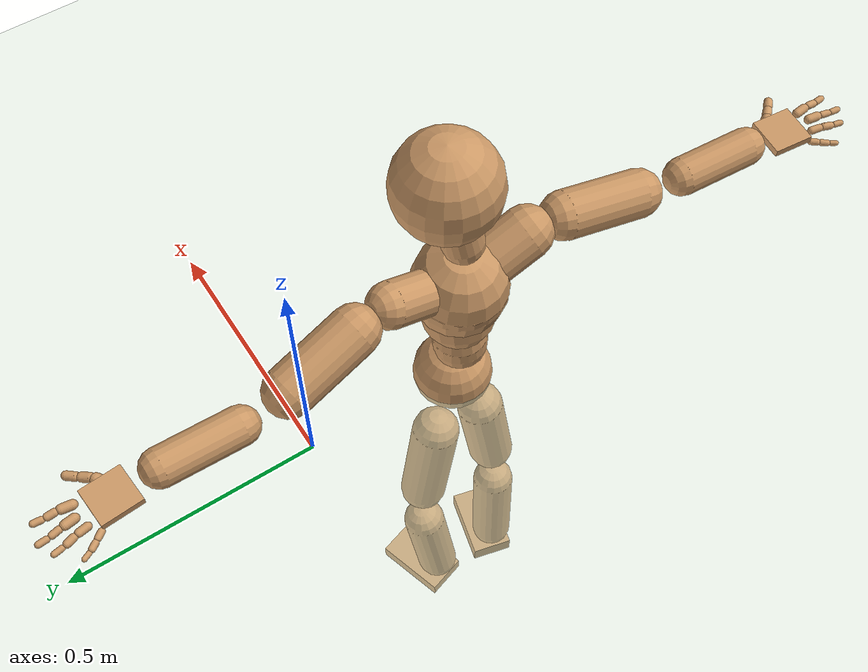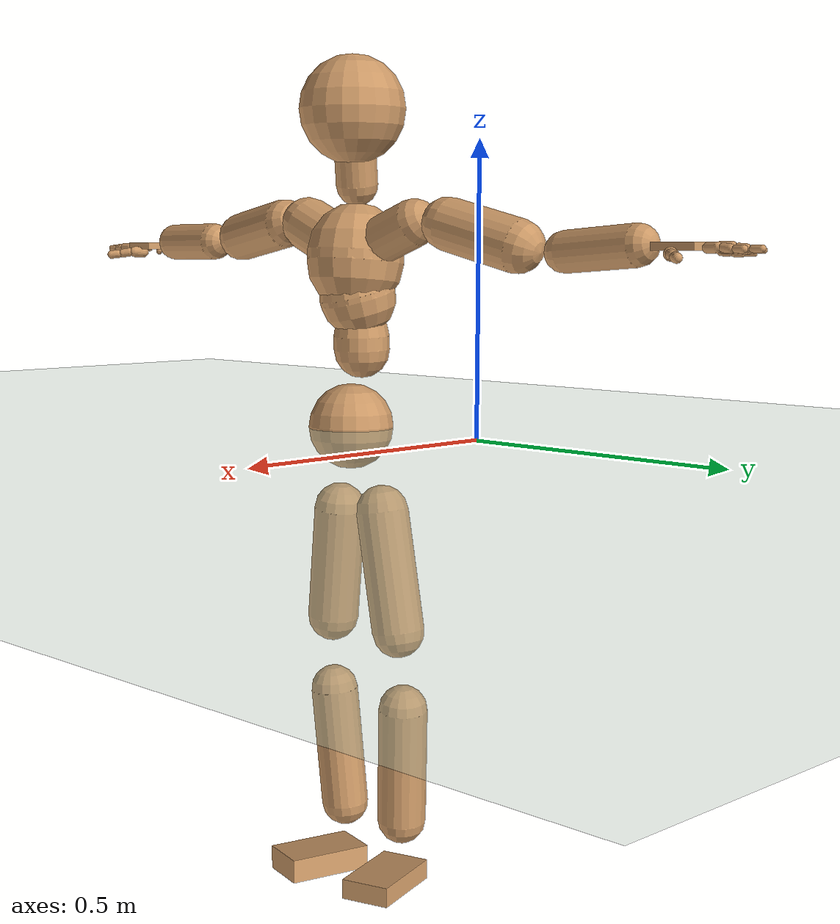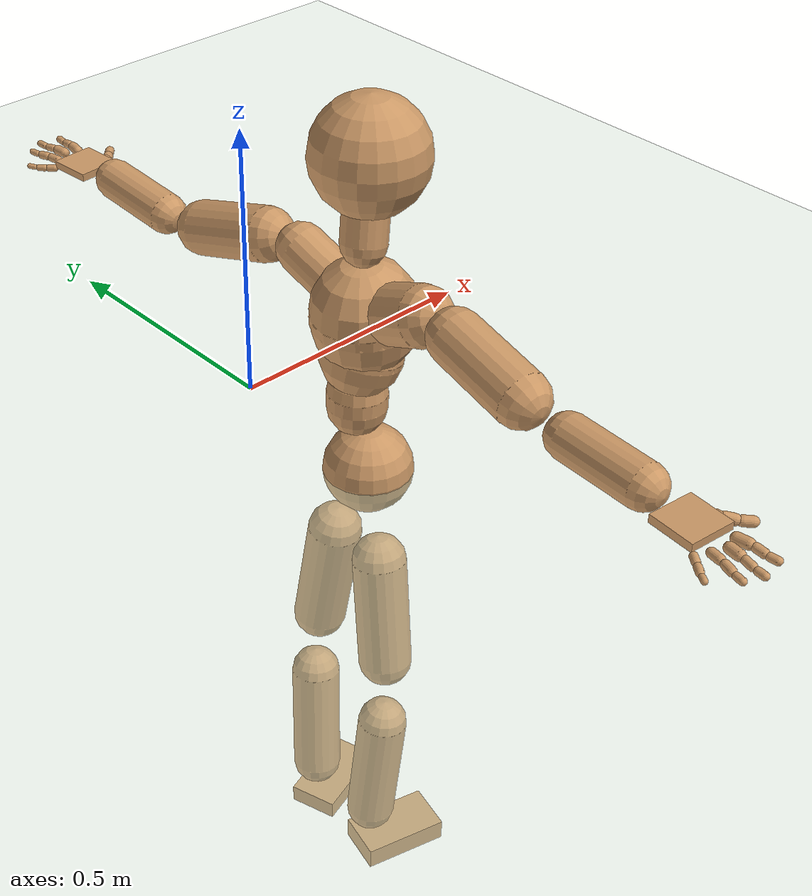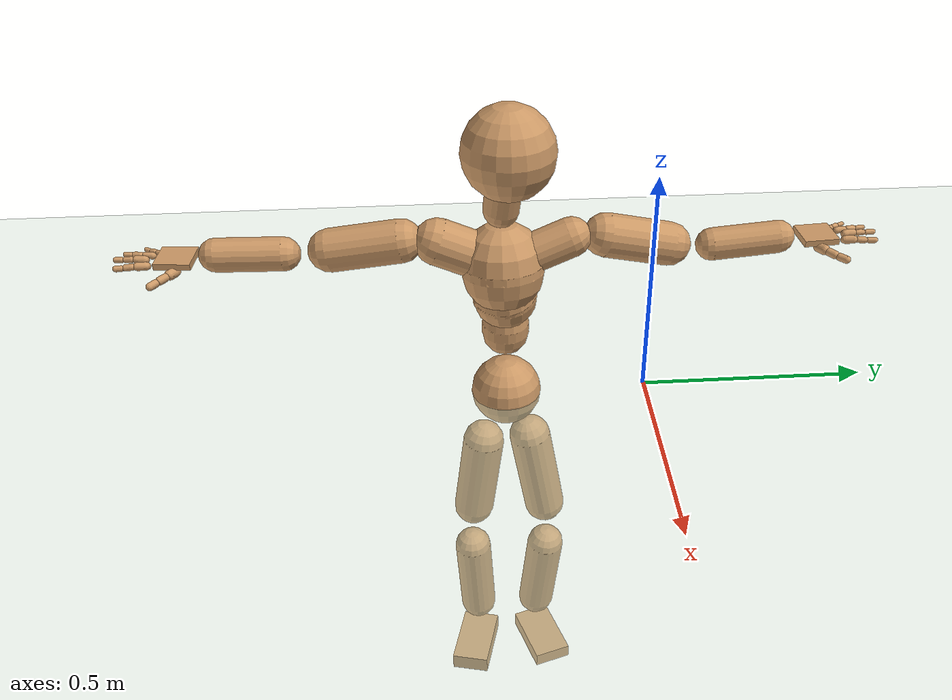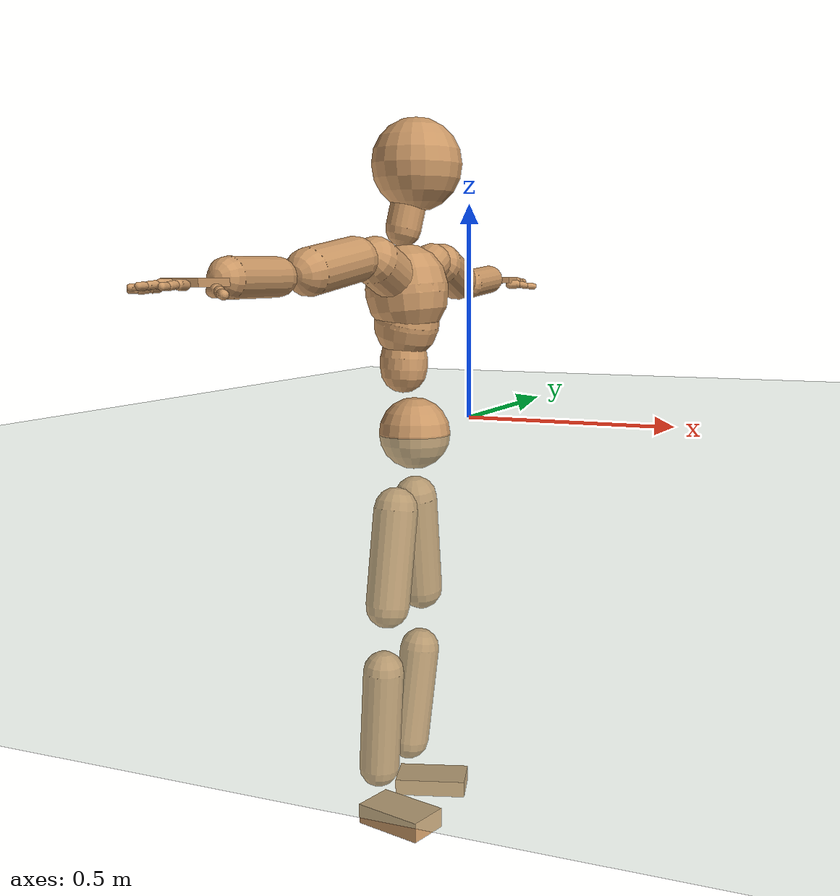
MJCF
<mujoco model="humanoid">
  <compiler coordinate="local" angle="radian"/>
  <default>
    <joint damping="0.0" armature="0.01" stiffness="0.0" limited="true"/>
    <geom conaffinity="1" condim="3" contype="7" margin="0.001" rgba="0.8 0.6 .4 1"/>
  </default>
  <asset>
    <texture type="skybox" builtin="gradient" rgb1=".4 .5 .6" rgb2="0 0 0" width="100" height="100"/>
    <texture builtin="flat" height="1278" mark="cross" markrgb="1 1 1" name="texgeom" random="0.01" rgb1="0.8 0.6 0.4" rgb2="0.8 0.6 0.4" type="cube" width="127"/>
    <texture builtin="checker" height="100" name="texplane" rgb1="0 0 0" rgb2="0.8 0.8 0.8" type="2d" width="100"/>
    <material name="MatPlane" reflectance="0.5" shininess="1" specular="1" texrepeat="60 60" texture="texplane"/>
    <material name="geom" texture="texgeom" texuniform="true"/>
  </asset>
  <worldbody>
    <light cutoff="100" diffuse="1 1 1" dir="-0 0 -1.3" directional="true" exponent="1" pos="0 0 1.3" specular=".1 .1 .1"/>
    <geom conaffinity="1" condim="3" name="floor" pos="0 0 0" rgba="0.8 0.9 0.8 1" size="100 100 .2" type="plane" material="MatPlane"/>
    <body name="Pelvis" pos="0.0004 -0.3114 0.0005">
      <freejoint name="Pelvis"/>
      <geom type="sphere" contype="1" conaffinity="1" density="500" size="0.0777" pos="0.0000 0.0000 0.0000" name="Pelvis"/>
      <body name="L_Hip" pos="-0.0238 0.0431 -0.0804">
        <joint name="L_Hip_x" type="hinge" pos="0 0 0" axis="1 0 0" stiffness="800" damping="80" armature="0.02" range="-180.0000 180.0000"/>
        <joint name="L_Hip_y" type="hinge" pos="0 0 0" axis="0 1 0" stiffness="800" damping="80" armature="0.02" range="-180.0000 180.0000"/>
        <joint name="L_Hip_z" type="hinge" pos="0 0 0" axis="0 0 1" stiffness="800" damping="80" armature="0.02" range="-180.0000 180.0000"/>
        <geom type="capsule" contype="1" conaffinity="1" density="500" fromto="-0.0016 0.0123 -0.0732 -0.0065 0.0491 -0.2928" size="0.048" name="L_Hip"/>
        <body name="L_Knee" pos="-0.0081 0.0613 -0.366">
          <joint name="L_Knee_x" type="hinge" pos="0 0 0" axis="1 0 0" stiffness="800" damping="80" armature="0.02" range="-180.0000 180.0000"/>
          <joint name="L_Knee_y" type="hinge" pos="0 0 0" axis="0 1 0" stiffness="800" damping="80" armature="0.02" range="-180.0000 180.0000"/>
          <joint name="L_Knee_z" type="hinge" pos="0 0 0" axis="0 0 1" stiffness="800" damping="80" armature="0.02" range="-180.0000 180.0000"/>
          <geom type="capsule" contype="1" conaffinity="1" density="500" fromto="-0.0062 -0.0073 -0.0737 -0.0249 -0.0293 -0.2948" size="0.0451" name="L_Knee"/>
          <body name="L_Ankle" pos="-0.0311 -0.0366 -0.3684">
            <joint name="L_Ankle_x" type="hinge" pos="0 0 0" axis="1 0 0" stiffness="800" damping="80" armature="0.02" range="-180.0000 180.0000"/>
            <joint name="L_Ankle_y" type="hinge" pos="0 0 0" axis="0 1 0" stiffness="800" damping="80" armature="0.02" range="-180.0000 180.0000"/>
            <joint name="L_Ankle_z" type="hinge" pos="0 0 0" axis="0 0 1" stiffness="800" damping="80" armature="0.02" range="-180.0000 180.0000"/>
            <geom type="box" contype="1" conaffinity="1" density="500" pos="0.0593 0.0185 -0.0263" size="0.0802 0.046 0.0183" quat="0.9886 0.0000 0.0000 0.1506" name="L_Ankle"/>
            <body name="L_Toe" pos="0.1187 0.037 -0.0525">
              <joint name="L_Toe_x" type="hinge" pos="0 0 0" axis="1 0 0" stiffness="500" damping="50" armature="0.02" range="-180.0000 180.0000"/>
              <joint name="L_Toe_y" type="hinge" pos="0 0 0" axis="0 1 0" stiffness="500" damping="50" armature="0.02" range="-180.0000 180.0000"/>
              <joint name="L_Toe_z" type="hinge" pos="0 0 0" axis="0 0 1" stiffness="500" damping="50" armature="0.02" range="-180.0000 180.0000"/>
              <geom type="box" contype="1" conaffinity="1" density="500" pos="0.0000 0.0000 0.0278" size="0.0009 0.0022 0.001" quat="0.9878 0.0000 0.0000 0.1557" name="L_Toe"/>
            </body>
          </body>
        </body>
      </body>
      <body name="R_Hip" pos="-0.0186 -0.0441 -0.0896">
        <joint name="R_Hip_x" type="hinge" pos="0 0 0" axis="1 0 0" stiffness="800" damping="80" armature="0.02" range="-180.0000 180.0000"/>
        <joint name="R_Hip_y" type="hinge" pos="0 0 0" axis="0 1 0" stiffness="800" damping="80" armature="0.02" range="-180.0000 180.0000"/>
        <joint name="R_Hip_z" type="hinge" pos="0 0 0" axis="0 0 1" stiffness="800" damping="80" armature="0.02" range="-180.0000 180.0000"/>
        <geom type="capsule" contype="1" conaffinity="1" density="500" fromto="-0.0027 -0.0097 -0.0702 -0.0109 -0.0387 -0.2807" size="0.0477" name="R_Hip"/>
        <body name="R_Knee" pos="-0.0137 -0.0484 -0.3508">
          <joint name="R_Knee_x" type="hinge" pos="0 0 0" axis="1 0 0" stiffness="800" damping="80" armature="0.02" range="-180.0000 180.0000"/>
          <joint name="R_Knee_y" type="hinge" pos="0 0 0" axis="0 1 0" stiffness="800" damping="80" armature="0.02" range="-180.0000 180.0000"/>
          <joint name="R_Knee_z" type="hinge" pos="0 0 0" axis="0 0 1" stiffness="800" damping="80" armature="0.02" range="-180.0000 180.0000"/>
          <geom type="capsule" contype="1" conaffinity="1" density="500" fromto="-0.0061 0.0030 -0.0762 -0.0245 0.0119 -0.3046" size="0.0446" name="R_Knee"/>
          <body name="R_Ankle" pos="-0.0307 0.0149 -0.3808">
            <joint name="R_Ankle_x" type="hinge" pos="0 0 0" axis="1 0 0" stiffness="800" damping="80" armature="0.02" range="-180.0000 180.0000"/>
            <joint name="R_Ankle_y" type="hinge" pos="0 0 0" axis="0 1 0" stiffness="800" damping="80" armature="0.02" range="-180.0000 180.0000"/>
            <joint name="R_Ankle_z" type="hinge" pos="0 0 0" axis="0 0 1" stiffness="800" damping="80" armature="0.02" range="-180.0000 180.0000"/>
            <geom type="box" contype="1" conaffinity="1" density="500" pos="0.0623 -0.0153 -0.0262" size="0.0802 0.046 0.0222" quat="0.9928 0.0000 0.0000 -0.1199" name="R_Ankle"/>
            <body name="R_Toe" pos="0.1246 -0.0305 -0.0525">
              <joint name="R_Toe_x" type="hinge" pos="0 0 0" axis="1 0 0" stiffness="500" damping="50" armature="0.02" range="-180.0000 180.0000"/>
              <joint name="R_Toe_y" type="hinge" pos="0 0 0" axis="0 1 0" stiffness="500" damping="50" armature="0.02" range="-180.0000 180.0000"/>
              <joint name="R_Toe_z" type="hinge" pos="0 0 0" axis="0 0 1" stiffness="500" damping="50" armature="0.02" range="-180.0000 180.0000"/>
              <geom type="box" contype="1" conaffinity="1" density="500" pos="0.0000 0.0000 0.0238" size="0.0009 0.0022 0.001" quat="0.9939 0.0000 0.0000 -0.1107" name="R_Toe"/>
            </body>
          </body>
        </body>
      </body>
      <body name="Torso" pos="-0.0274 0.0006 0.0884">
        <joint name="Torso_x" type="hinge" pos="0 0 0" axis="1 0 0" stiffness="1000" damping="100" armature="0.02" range="-180.0000 180.0000"/>
        <joint name="Torso_y" type="hinge" pos="0 0 0" axis="0 1 0" stiffness="1000" damping="100" armature="0.02" range="-180.0000 180.0000"/>
        <joint name="Torso_z" type="hinge" pos="0 0 0" axis="0 0 1" stiffness="1000" damping="100" armature="0.02" range="-180.0000 180.0000"/>
        <geom type="capsule" contype="1" conaffinity="1" density="500" fromto="0.0031 0.0013 0.0742 0.0020 0.0009 0.0494" size="0.0512" name="Torso"/>
        <body name="Spine" pos="0.0051 0.0021 0.1236">
          <joint name="Spine_x" type="hinge" pos="0 0 0" axis="1 0 0" stiffness="1000" damping="100" armature="0.02" range="-180.0000 180.0000"/>
          <joint name="Spine_y" type="hinge" pos="0 0 0" axis="0 1 0" stiffness="1000" damping="100" armature="0.02" range="-180.0000 180.0000"/>
          <joint name="Spine_z" type="hinge" pos="0 0 0" axis="0 0 1" stiffness="1000" damping="100" armature="0.02" range="-180.0000 180.0000"/>
          <geom type="capsule" contype="1" conaffinity="1" density="500" fromto="0.0074 -0.0026 0.0289 0.0049 -0.0017 0.0192" size="0.0694" name="Spine"/>
          <body name="Chest" pos="0.0123 -0.0044 0.0481">
            <joint name="Chest_x" type="hinge" pos="0 0 0" axis="1 0 0" stiffness="1000" damping="100" armature="0.02" range="-180.0000 180.0000"/>
            <joint name="Chest_y" type="hinge" pos="0 0 0" axis="0 1 0" stiffness="1000" damping="100" armature="0.02" range="-180.0000 180.0000"/>
            <joint name="Chest_z" type="hinge" pos="0 0 0" axis="0 0 1" stiffness="1000" damping="100" armature="0.02" range="-180.0000 180.0000"/>
            <geom type="capsule" contype="1" conaffinity="1" density="500" fromto="-0.0051 -0.0010 0.0541 -0.0034 -0.0007 0.0361" size="0.0882" name="Chest"/>
            <body name="Neck" pos="-0.0161 -0.0062 0.1405">
              <joint name="Neck_x" type="hinge" pos="0 0 0" axis="1 0 0" stiffness="500" damping="50" armature="0.02" range="-180.0000 180.0000"/>
              <joint name="Neck_y" type="hinge" pos="0 0 0" axis="0 1 0" stiffness="500" damping="50" armature="0.02" range="-180.0000 180.0000"/>
              <joint name="Neck_z" type="hinge" pos="0 0 0" axis="0 0 1" stiffness="500" damping="50" armature="0.02" range="-180.0000 180.0000"/>
              <geom type="capsule" contype="1" conaffinity="1" density="500" fromto="0.0063 0.0038 0.0326 0.0251 0.0153 0.1306" size="0.0379" name="Neck"/>
              <body name="Head" pos="0.0313 0.0191 0.1632">
                <joint name="Head_x" type="hinge" pos="0 0 0" axis="1 0 0" stiffness="500" damping="50" armature="0.02" range="-180.0000 180.0000"/>
                <joint name="Head_y" type="hinge" pos="0 0 0" axis="0 1 0" stiffness="500" damping="50" armature="0.02" range="-180.0000 180.0000"/>
                <joint name="Head_z" type="hinge" pos="0 0 0" axis="0 0 1" stiffness="500" damping="50" armature="0.02" range="-180.0000 180.0000"/>
                <geom type="sphere" contype="1" conaffinity="1" density="500" size="0.0957" pos="0.0000 0.0000 0.0000" name="Head"/>
              </body>
            </body>
            <body name="L_Thorax" pos="-0.0029 0.04 0.065">
              <joint name="L_Thorax_x" type="hinge" pos="0 0 0" axis="1 0 0" stiffness="500" damping="50" armature="0.02" range="-180.0000 180.0000"/>
              <joint name="L_Thorax_y" type="hinge" pos="0 0 0" axis="0 1 0" stiffness="500" damping="50" armature="0.02" range="-180.0000 180.0000"/>
              <joint name="L_Thorax_z" type="hinge" pos="0 0 0" axis="0 0 1" stiffness="500" damping="50" armature="0.02" range="-180.0000 180.0000"/>
              <geom type="capsule" contype="1" conaffinity="1" density="500" fromto="-0.0018 0.0255 0.0099 -0.0072 0.1020 0.0395" size="0.0423" name="L_Thorax"/>
              <body name="L_Shoulder" pos="-0.009 0.1276 0.0494">
                <joint name="L_Shoulder_x" type="hinge" pos="0 0 0" axis="1 0 0" stiffness="500" damping="50" armature="0.02" range="-180.0000 180.0000"/>
                <joint name="L_Shoulder_y" type="hinge" pos="0 0 0" axis="0 1 0" stiffness="500" damping="50" armature="0.02" range="-180.0000 180.0000"/>
                <joint name="L_Shoulder_z" type="hinge" pos="0 0 0" axis="0 0 1" stiffness="500" damping="50" armature="0.02" range="-180.0000 180.0000"/>
                <geom type="capsule" contype="1" conaffinity="1" density="500" fromto="-0.0071 0.0469 -0.0126 -0.0282 0.1875 -0.0502" size="0.0463" name="L_Shoulder"/>
                <body name="L_Elbow" pos="-0.0353 0.2343 -0.0628">
                  <joint name="L_Elbow_x" type="hinge" pos="0 0 0" axis="1 0 0" stiffness="500" damping="50" armature="0.02" range="-720.0000 720.0000"/>
                  <joint name="L_Elbow_y" type="hinge" pos="0 0 0" axis="0 1 0" stiffness="500" damping="50" armature="0.02" range="-720.0000 720.0000"/>
                  <joint name="L_Elbow_z" type="hinge" pos="0 0 0" axis="0 0 1" stiffness="500" damping="50" armature="0.02" range="-720.0000 720.0000"/>
                  <geom type="capsule" contype="1" conaffinity="1" density="500" fromto="-0.0009 0.0478 0.0035 -0.0036 0.1914 0.0140" size="0.0351" name="L_Elbow"/>
                  <body name="L_Wrist" pos="-0.0045 0.2392 0.0175">
                    <joint name="L_Wrist_x" type="hinge" pos="0 0 0" axis="1 0 0" stiffness="300" damping="30" armature="0.02" range="-180.0000 180.0000"/>
                    <joint name="L_Wrist_y" type="hinge" pos="0 0 0" axis="0 1 0" stiffness="300" damping="30" armature="0.02" range="-180.0000 180.0000"/>
                    <joint name="L_Wrist_z" type="hinge" pos="0 0 0" axis="0 0 1" stiffness="300" damping="30" armature="0.02" range="-180.0000 180.0000"/>
                    <geom type="box" contype="1" conaffinity="1" density="500" pos="-0.0029 0.0375 -0.0054" size="0.0382 0.0377 0.0067" quat="0.7342 0.0000 0.0000 -0.6790" name="L_Wrist"/>
                    <body name="L_Index1" pos="0.0181 0.0882 -0.0078">
                      <joint name="L_Index1_x" type="hinge" pos="0 0 0" axis="1 0 0" stiffness="100" damping="10" armature="0.02" range="-180.0000 180.0000"/>
                      <joint name="L_Index1_y" type="hinge" pos="0 0 0" axis="0 1 0" stiffness="100" damping="10" armature="0.02" range="-180.0000 180.0000"/>
                      <joint name="L_Index1_z" type="hinge" pos="0 0 0" axis="0 0 1" stiffness="100" damping="10" armature="0.02" range="-180.0000 180.0000"/>
                      <geom type="capsule" contype="1" conaffinity="1" density="500" fromto="0.0007 0.0061 0.0003 0.0028 0.0245 0.0010" size="0.0087" name="L_Index1"/>
                      <body name="L_Index2" pos="0.0034 0.0306 0.0013">
                        <joint name="L_Index2_x" type="hinge" pos="0 0 0" axis="1 0 0" stiffness="100" damping="10" armature="0.02" range="-180.0000 180.0000"/>
                        <joint name="L_Index2_y" type="hinge" pos="0 0 0" axis="0 1 0" stiffness="100" damping="10" armature="0.02" range="-180.0000 180.0000"/>
                        <joint name="L_Index2_z" type="hinge" pos="0 0 0" axis="0 0 1" stiffness="100" damping="10" armature="0.02" range="-180.0000 180.0000"/>
                        <geom type="capsule" contype="1" conaffinity="1" density="500" fromto="0.0000 0.0043 -0.0005 0.0000 0.0173 -0.0019" size="0.0072" name="L_Index2"/>
                        <body name="L_Index3" pos="0 0.0217 -0.0024">
                          <joint name="L_Index3_x" type="hinge" pos="0 0 0" axis="1 0 0" stiffness="100" damping="10" armature="0.02" range="-180.0000 180.0000"/>
                          <joint name="L_Index3_y" type="hinge" pos="0 0 0" axis="0 1 0" stiffness="100" damping="10" armature="0.02" range="-180.0000 180.0000"/>
                          <joint name="L_Index3_z" type="hinge" pos="0 0 0" axis="0 0 1" stiffness="100" damping="10" armature="0.02" range="-180.0000 180.0000"/>
                          <geom type="capsule" contype="1" conaffinity="1" density="500" fromto="0.0004 0.0047 -0.0001 0.0016 0.0189 -0.0003" size="0.0062" name="L_Index3"/>
                        </body>
                      </body>
                    </body>
                    <body name="L_Middle1" pos="-0.004 0.0956 -0.006">
                      <joint name="L_Middle1_x" type="hinge" pos="0 0 0" axis="1 0 0" stiffness="100" damping="10" armature="0.02" range="-180.0000 180.0000"/>
                      <joint name="L_Middle1_y" type="hinge" pos="0 0 0" axis="0 1 0" stiffness="100" damping="10" armature="0.02" range="-180.0000 180.0000"/>
                      <joint name="L_Middle1_z" type="hinge" pos="0 0 0" axis="0 0 1" stiffness="100" damping="10" armature="0.02" range="-180.0000 180.0000"/>
                      <geom type="capsule" contype="1" conaffinity="1" density="500" fromto="-0.0008 0.0058 0.0000 -0.0033 0.0234 0.0000" size="0.0087" name="L_Middle1"/>
                      <body name="L_Middle2" pos="-0.0042 0.0292 0">
                        <joint name="L_Middle2_x" type="hinge" pos="0 0 0" axis="1 0 0" stiffness="100" damping="10" armature="0.02" range="-180.0000 180.0000"/>
                        <joint name="L_Middle2_y" type="hinge" pos="0 0 0" axis="0 1 0" stiffness="100" damping="10" armature="0.02" range="-180.0000 180.0000"/>
                        <joint name="L_Middle2_z" type="hinge" pos="0 0 0" axis="0 0 1" stiffness="100" damping="10" armature="0.02" range="-180.0000 180.0000"/>
                        <geom type="capsule" contype="1" conaffinity="1" density="500" fromto="-0.0008 0.0045 -0.0005 -0.0032 0.0179 -0.0018" size="0.0065" name="L_Middle2"/>
                        <body name="L_Middle3" pos="-0.004 0.0224 -0.0023">
                          <joint name="L_Middle3_x" type="hinge" pos="0 0 0" axis="1 0 0" stiffness="100" damping="10" armature="0.02" range="-180.0000 180.0000"/>
                          <joint name="L_Middle3_y" type="hinge" pos="0 0 0" axis="0 1 0" stiffness="100" damping="10" armature="0.02" range="-180.0000 180.0000"/>
                          <joint name="L_Middle3_z" type="hinge" pos="0 0 0" axis="0 0 1" stiffness="100" damping="10" armature="0.02" range="-180.0000 180.0000"/>
                          <geom type="capsule" contype="1" conaffinity="1" density="500" fromto="-0.0004 0.0049 -0.0001 -0.0016 0.0195 -0.0002" size="0.0059" name="L_Middle3"/>
                        </body>
                      </body>
                    </body>
                    <body name="L_Pinky1" pos="-0.0414 0.0729 -0.0134">
                      <joint name="L_Pinky1_x" type="hinge" pos="0 0 0" axis="1 0 0" stiffness="100" damping="10" armature="0.02" range="-180.0000 180.0000"/>
                      <joint name="L_Pinky1_y" type="hinge" pos="0 0 0" axis="0 1 0" stiffness="100" damping="10" armature="0.02" range="-180.0000 180.0000"/>
                      <joint name="L_Pinky1_z" type="hinge" pos="0 0 0" axis="0 0 1" stiffness="100" damping="10" armature="0.02" range="-180.0000 180.0000"/>
                      <geom type="capsule" contype="1" conaffinity="1" density="500" fromto="-0.0022 0.0031 -0.0003 -0.0089 0.0124 -0.0012" size="0.0062" name="L_Pinky1"/>
                      <body name="L_Pinky2" pos="-0.0112 0.0155 -0.0015">
                        <joint name="L_Pinky2_x" type="hinge" pos="0 0 0" axis="1 0 0" stiffness="100" damping="10" armature="0.02" range="-180.0000 180.0000"/>
                        <joint name="L_Pinky2_y" type="hinge" pos="0 0 0" axis="0 1 0" stiffness="100" damping="10" armature="0.02" range="-180.0000 180.0000"/>
                        <joint name="L_Pinky2_z" type="hinge" pos="0 0 0" axis="0 0 1" stiffness="100" damping="10" armature="0.02" range="-180.0000 180.0000"/>
                        <geom type="capsule" contype="1" conaffinity="1" density="500" fromto="-0.0021 0.0031 -0.0003 -0.0084 0.0122 -0.0013" size="0.0061" name="L_Pinky2"/>
                        <body name="L_Pinky3" pos="-0.0105 0.0153 -0.0016">
                          <joint name="L_Pinky3_x" type="hinge" pos="0 0 0" axis="1 0 0" stiffness="100" damping="10" armature="0.02" range="-180.0000 180.0000"/>
                          <joint name="L_Pinky3_y" type="hinge" pos="0 0 0" axis="0 1 0" stiffness="100" damping="10" armature="0.02" range="-180.0000 180.0000"/>
                          <joint name="L_Pinky3_z" type="hinge" pos="0 0 0" axis="0 0 1" stiffness="100" damping="10" armature="0.02" range="-180.0000 180.0000"/>
                          <geom type="capsule" contype="1" conaffinity="1" density="500" fromto="-0.0017 0.0035 0.0001 -0.0068 0.0138 0.0003" size="0.0047" name="L_Pinky3"/>
                        </body>
                      </body>
                    </body>
                    <body name="L_Ring1" pos="-0.0258 0.0848 -0.0088">
                      <joint name="L_Ring1_x" type="hinge" pos="0 0 0" axis="1 0 0" stiffness="100" damping="10" armature="0.02" range="-180.0000 180.0000"/>
                      <joint name="L_Ring1_y" type="hinge" pos="0 0 0" axis="0 1 0" stiffness="100" damping="10" armature="0.02" range="-180.0000 180.0000"/>
                      <joint name="L_Ring1_z" type="hinge" pos="0 0 0" axis="0 0 1" stiffness="100" damping="10" armature="0.02" range="-180.0000 180.0000"/>
                      <geom type="capsule" contype="1" conaffinity="1" density="500" fromto="-0.0009 0.0054 0.0000 -0.0038 0.0214 0.0001" size="0.0074" name="L_Ring1"/>
                      <body name="L_Ring2" pos="-0.0047 0.0268 0.0001">
                        <joint name="L_Ring2_x" type="hinge" pos="0 0 0" axis="1 0 0" stiffness="100" damping="10" armature="0.02" range="-180.0000 180.0000"/>
                        <joint name="L_Ring2_y" type="hinge" pos="0 0 0" axis="0 1 0" stiffness="100" damping="10" armature="0.02" range="-180.0000 180.0000"/>
                        <joint name="L_Ring2_z" type="hinge" pos="0 0 0" axis="0 0 1" stiffness="100" damping="10" armature="0.02" range="-180.0000 180.0000"/>
                        <geom type="capsule" contype="1" conaffinity="1" density="500" fromto="-0.0013 0.0044 -0.0004 -0.0050 0.0176 -0.0017" size="0.0071" name="L_Ring2"/>
                        <body name="L_Ring3" pos="-0.0063 0.022 -0.0021">
                          <joint name="L_Ring3_x" type="hinge" pos="0 0 0" axis="1 0 0" stiffness="100" damping="10" armature="0.02" range="-180.0000 180.0000"/>
                          <joint name="L_Ring3_y" type="hinge" pos="0 0 0" axis="0 1 0" stiffness="100" damping="10" armature="0.02" range="-180.0000 180.0000"/>
                          <joint name="L_Ring3_z" type="hinge" pos="0 0 0" axis="0 0 1" stiffness="100" damping="10" armature="0.02" range="-180.0000 180.0000"/>
                          <geom type="capsule" contype="1" conaffinity="1" density="500" fromto="-0.0009 0.0048 -0.0000 -0.0034 0.0192 -0.0001" size="0.0055" name="L_Ring3"/>
                        </body>
                      </body>
                    </body>
                    <body name="L_Thumb1" pos="0.0238 0.033 -0.0176">
                      <joint name="L_Thumb1_x" type="hinge" pos="0 0 0" axis="1 0 0" stiffness="100" damping="10" armature="0.02" range="-180.0000 180.0000"/>
                      <joint name="L_Thumb1_y" type="hinge" pos="0 0 0" axis="0 1 0" stiffness="100" damping="10" armature="0.02" range="-180.0000 180.0000"/>
                      <joint name="L_Thumb1_z" type="hinge" pos="0 0 0" axis="0 0 1" stiffness="100" damping="10" armature="0.02" range="-180.0000 180.0000"/>
                      <geom type="capsule" contype="1" conaffinity="1" density="500" fromto="0.0050 0.0029 0.0003 0.0199 0.0117 0.0010" size="0.011" name="L_Thumb1"/>
                      <body name="L_Thumb2" pos="0.0248 0.0146 0.0013">
                        <joint name="L_Thumb2_x" type="hinge" pos="0 0 0" axis="1 0 0" stiffness="100" damping="10" armature="0.02" range="-180.0000 180.0000"/>
                        <joint name="L_Thumb2_y" type="hinge" pos="0 0 0" axis="0 1 0" stiffness="100" damping="10" armature="0.02" range="-180.0000 180.0000"/>
                        <joint name="L_Thumb2_z" type="hinge" pos="0 0 0" axis="0 0 1" stiffness="100" damping="10" armature="0.02" range="-180.0000 180.0000"/>
                        <geom type="capsule" contype="1" conaffinity="1" density="500" fromto="0.0032 0.0037 -0.0009 0.0127 0.0147 -0.0034" size="0.0088" name="L_Thumb2"/>
                        <body name="L_Thumb3" pos="0.0159 0.0184 -0.0043">
                          <joint name="L_Thumb3_x" type="hinge" pos="0 0 0" axis="1 0 0" stiffness="100" damping="10" armature="0.02" range="-180.0000 180.0000"/>
                          <joint name="L_Thumb3_y" type="hinge" pos="0 0 0" axis="0 1 0" stiffness="100" damping="10" armature="0.02" range="-180.0000 180.0000"/>
                          <joint name="L_Thumb3_z" type="hinge" pos="0 0 0" axis="0 0 1" stiffness="100" damping="10" armature="0.02" range="-180.0000 180.0000"/>
                          <geom type="capsule" contype="1" conaffinity="1" density="500" fromto="0.0036 0.0041 -0.0005 0.0143 0.0163 -0.0018" size="0.0082" name="L_Thumb3"/>
                        </body>
                      </body>
                    </body>
                  </body>
                </body>
              </body>
            </body>
            <body name="R_Thorax" pos="-0.0065 -0.0388 0.0651">
              <joint name="R_Thorax_x" type="hinge" pos="0 0 0" axis="1 0 0" stiffness="500" damping="50" armature="0.02" range="-180.0000 180.0000"/>
              <joint name="R_Thorax_y" type="hinge" pos="0 0 0" axis="0 1 0" stiffness="500" damping="50" armature="0.02" range="-180.0000 180.0000"/>
              <joint name="R_Thorax_z" type="hinge" pos="0 0 0" axis="0 0 1" stiffness="500" damping="50" armature="0.02" range="-180.0000 180.0000"/>
              <geom type="capsule" contype="1" conaffinity="1" density="500" fromto="-0.0008 -0.0238 0.0100 -0.0032 -0.0951 0.0399" size="0.0495" name="R_Thorax"/>
              <body name="R_Shoulder" pos="-0.004 -0.1189 0.0499">
                <joint name="R_Shoulder_x" type="hinge" pos="0 0 0" axis="1 0 0" stiffness="500" damping="50" armature="0.02" range="-180.0000 180.0000"/>
                <joint name="R_Shoulder_y" type="hinge" pos="0 0 0" axis="0 1 0" stiffness="500" damping="50" armature="0.02" range="-180.0000 180.0000"/>
                <joint name="R_Shoulder_z" type="hinge" pos="0 0 0" axis="0 0 1" stiffness="500" damping="50" armature="0.02" range="-180.0000 180.0000"/>
                <geom type="capsule" contype="1" conaffinity="1" density="500" fromto="-0.0056 -0.0498 -0.0082 -0.0224 -0.1993 -0.0327" size="0.0454" name="R_Shoulder"/>
                <body name="R_Elbow" pos="-0.028 -0.2491 -0.0409">
                  <joint name="R_Elbow_x" type="hinge" pos="0 0 0" axis="1 0 0" stiffness="500" damping="50" armature="0.02" range="-720.0000 720.0000"/>
                  <joint name="R_Elbow_y" type="hinge" pos="0 0 0" axis="0 1 0" stiffness="500" damping="50" armature="0.02" range="-720.0000 720.0000"/>
                  <joint name="R_Elbow_z" type="hinge" pos="0 0 0" axis="0 0 1" stiffness="500" damping="50" armature="0.02" range="-720.0000 720.0000"/>
                  <geom type="capsule" contype="1" conaffinity="1" density="500" fromto="-0.0025 -0.0464 -0.0004 -0.0098 -0.1856 -0.0015" size="0.0359" name="R_Elbow"/>
                  <body name="R_Wrist" pos="-0.0123 -0.232 -0.0018">
                    <joint name="R_Wrist_x" type="hinge" pos="0 0 0" axis="1 0 0" stiffness="300" damping="30" armature="0.02" range="-180.0000 180.0000"/>
                    <joint name="R_Wrist_y" type="hinge" pos="0 0 0" axis="0 1 0" stiffness="300" damping="30" armature="0.02" range="-180.0000 180.0000"/>
                    <joint name="R_Wrist_z" type="hinge" pos="0 0 0" axis="0 0 1" stiffness="300" damping="30" armature="0.02" range="-180.0000 180.0000"/>
                    <geom type="box" contype="1" conaffinity="1" density="500" pos="-0.0034 -0.0374 -0.0069" size="0.0382 0.0385 0.0069" quat="0.7382 0.0000 0.0000 0.6746" name="R_Wrist"/>
                    <body name="R_Index1" pos="0.0173 -0.0882 -0.0109">
                      <joint name="R_Index1_x" type="hinge" pos="0 0 0" axis="1 0 0" stiffness="100" damping="10" armature="0.02" range="-180.0000 180.0000"/>
                      <joint name="R_Index1_y" type="hinge" pos="0 0 0" axis="0 1 0" stiffness="100" damping="10" armature="0.02" range="-180.0000 180.0000"/>
                      <joint name="R_Index1_z" type="hinge" pos="0 0 0" axis="0 0 1" stiffness="100" damping="10" armature="0.02" range="-180.0000 180.0000"/>
                      <geom type="capsule" contype="1" conaffinity="1" density="500" fromto="0.0007 -0.0061 0.0003 0.0028 -0.0245 0.0010" size="0.0087" name="R_Index1"/>
                      <body name="R_Index2" pos="0.0034 -0.0306 0.0013">
                        <joint name="R_Index2_x" type="hinge" pos="0 0 0" axis="1 0 0" stiffness="100" damping="10" armature="0.02" range="-180.0000 180.0000"/>
                        <joint name="R_Index2_y" type="hinge" pos="0 0 0" axis="0 1 0" stiffness="100" damping="10" armature="0.02" range="-180.0000 180.0000"/>
                        <joint name="R_Index2_z" type="hinge" pos="0 0 0" axis="0 0 1" stiffness="100" damping="10" armature="0.02" range="-180.0000 180.0000"/>
                        <geom type="capsule" contype="1" conaffinity="1" density="500" fromto="0.0000 -0.0043 -0.0005 0.0000 -0.0173 -0.0019" size="0.0072" name="R_Index2"/>
                        <body name="R_Index3" pos="0 -0.0217 -0.0024">
                          <joint name="R_Index3_x" type="hinge" pos="0 0 0" axis="1 0 0" stiffness="100" damping="10" armature="0.02" range="-180.0000 180.0000"/>
                          <joint name="R_Index3_y" type="hinge" pos="0 0 0" axis="0 1 0" stiffness="100" damping="10" armature="0.02" range="-180.0000 180.0000"/>
                          <joint name="R_Index3_z" type="hinge" pos="0 0 0" axis="0 0 1" stiffness="100" damping="10" armature="0.02" range="-180.0000 180.0000"/>
                          <geom type="capsule" contype="1" conaffinity="1" density="500" fromto="0.0004 -0.0039 -0.0001 0.0016 -0.0157 -0.0003" size="0.0065" name="R_Index3"/>
                        </body>
                      </body>
                    </body>
                    <body name="R_Middle1" pos="-0.0049 -0.0955 -0.009">
                      <joint name="R_Middle1_x" type="hinge" pos="0 0 0" axis="1 0 0" stiffness="100" damping="10" armature="0.02" range="-180.0000 180.0000"/>
                      <joint name="R_Middle1_y" type="hinge" pos="0 0 0" axis="0 1 0" stiffness="100" damping="10" armature="0.02" range="-180.0000 180.0000"/>
                      <joint name="R_Middle1_z" type="hinge" pos="0 0 0" axis="0 0 1" stiffness="100" damping="10" armature="0.02" range="-180.0000 180.0000"/>
                      <geom type="capsule" contype="1" conaffinity="1" density="500" fromto="-0.0008 -0.0058 0.0000 -0.0033 -0.0234 0.0000" size="0.0087" name="R_Middle1"/>
                      <body name="R_Middle2" pos="-0.0042 -0.0292 0">
                        <joint name="R_Middle2_x" type="hinge" pos="0 0 0" axis="1 0 0" stiffness="100" damping="10" armature="0.02" range="-180.0000 180.0000"/>
                        <joint name="R_Middle2_y" type="hinge" pos="0 0 0" axis="0 1 0" stiffness="100" damping="10" armature="0.02" range="-180.0000 180.0000"/>
                        <joint name="R_Middle2_z" type="hinge" pos="0 0 0" axis="0 0 1" stiffness="100" damping="10" armature="0.02" range="-180.0000 180.0000"/>
                        <geom type="capsule" contype="1" conaffinity="1" density="500" fromto="-0.0008 -0.0045 -0.0005 -0.0032 -0.0179 -0.0018" size="0.0066" name="R_Middle2"/>
                        <body name="R_Middle3" pos="-0.004 -0.0224 -0.0023">
                          <joint name="R_Middle3_x" type="hinge" pos="0 0 0" axis="1 0 0" stiffness="100" damping="10" armature="0.02" range="-180.0000 180.0000"/>
                          <joint name="R_Middle3_y" type="hinge" pos="0 0 0" axis="0 1 0" stiffness="100" damping="10" armature="0.02" range="-180.0000 180.0000"/>
                          <joint name="R_Middle3_z" type="hinge" pos="0 0 0" axis="0 0 1" stiffness="100" damping="10" armature="0.02" range="-180.0000 180.0000"/>
                          <geom type="capsule" contype="1" conaffinity="1" density="500" fromto="-0.0004 -0.0041 -0.0001 -0.0016 -0.0163 -0.0002" size="0.0062" name="R_Middle3"/>
                        </body>
                      </body>
                    </body>
                    <body name="R_Pinky1" pos="-0.0423 -0.0729 -0.0165">
                      <joint name="R_Pinky1_x" type="hinge" pos="0 0 0" axis="1 0 0" stiffness="100" damping="10" armature="0.02" range="-180.0000 180.0000"/>
                      <joint name="R_Pinky1_y" type="hinge" pos="0 0 0" axis="0 1 0" stiffness="100" damping="10" armature="0.02" range="-180.0000 180.0000"/>
                      <joint name="R_Pinky1_z" type="hinge" pos="0 0 0" axis="0 0 1" stiffness="100" damping="10" armature="0.02" range="-180.0000 180.0000"/>
                      <geom type="capsule" contype="1" conaffinity="1" density="500" fromto="-0.0022 -0.0031 -0.0003 -0.0089 -0.0124 -0.0012" size="0.0062" name="R_Pinky1"/>
                      <body name="R_Pinky2" pos="-0.0112 -0.0155 -0.0015">
                        <joint name="R_Pinky2_x" type="hinge" pos="0 0 0" axis="1 0 0" stiffness="100" damping="10" armature="0.02" range="-180.0000 180.0000"/>
                        <joint name="R_Pinky2_y" type="hinge" pos="0 0 0" axis="0 1 0" stiffness="100" damping="10" armature="0.02" range="-180.0000 180.0000"/>
                        <joint name="R_Pinky2_z" type="hinge" pos="0 0 0" axis="0 0 1" stiffness="100" damping="10" armature="0.02" range="-180.0000 180.0000"/>
                        <geom type="capsule" contype="1" conaffinity="1" density="500" fromto="-0.0021 -0.0031 -0.0003 -0.0084 -0.0122 -0.0013" size="0.0061" name="R_Pinky2"/>
                        <body name="R_Pinky3" pos="-0.0105 -0.0153 -0.0016">
                          <joint name="R_Pinky3_x" type="hinge" pos="0 0 0" axis="1 0 0" stiffness="100" damping="10" armature="0.02" range="-180.0000 180.0000"/>
                          <joint name="R_Pinky3_y" type="hinge" pos="0 0 0" axis="0 1 0" stiffness="100" damping="10" armature="0.02" range="-180.0000 180.0000"/>
                          <joint name="R_Pinky3_z" type="hinge" pos="0 0 0" axis="0 0 1" stiffness="100" damping="10" armature="0.02" range="-180.0000 180.0000"/>
                          <geom type="capsule" contype="1" conaffinity="1" density="500" fromto="-0.0017 -0.0027 0.0001 -0.0068 -0.0106 0.0003" size="0.0049" name="R_Pinky3"/>
                        </body>
                      </body>
                    </body>
                    <body name="R_Ring1" pos="-0.0267 -0.0847 -0.0118">
                      <joint name="R_Ring1_x" type="hinge" pos="0 0 0" axis="1 0 0" stiffness="100" damping="10" armature="0.02" range="-180.0000 180.0000"/>
                      <joint name="R_Ring1_y" type="hinge" pos="0 0 0" axis="0 1 0" stiffness="100" damping="10" armature="0.02" range="-180.0000 180.0000"/>
                      <joint name="R_Ring1_z" type="hinge" pos="0 0 0" axis="0 0 1" stiffness="100" damping="10" armature="0.02" range="-180.0000 180.0000"/>
                      <geom type="capsule" contype="1" conaffinity="1" density="500" fromto="-0.0009 -0.0054 0.0000 -0.0038 -0.0214 0.0001" size="0.0074" name="R_Ring1"/>
                      <body name="R_Ring2" pos="-0.0047 -0.0268 0.0001">
                        <joint name="R_Ring2_x" type="hinge" pos="0 0 0" axis="1 0 0" stiffness="100" damping="10" armature="0.02" range="-180.0000 180.0000"/>
                        <joint name="R_Ring2_y" type="hinge" pos="0 0 0" axis="0 1 0" stiffness="100" damping="10" armature="0.02" range="-180.0000 180.0000"/>
                        <joint name="R_Ring2_z" type="hinge" pos="0 0 0" axis="0 0 1" stiffness="100" damping="10" armature="0.02" range="-180.0000 180.0000"/>
                        <geom type="capsule" contype="1" conaffinity="1" density="500" fromto="-0.0013 -0.0044 -0.0004 -0.0050 -0.0176 -0.0017" size="0.0071" name="R_Ring2"/>
                        <body name="R_Ring3" pos="-0.0063 -0.022 -0.0021">
                          <joint name="R_Ring3_x" type="hinge" pos="0 0 0" axis="1 0 0" stiffness="100" damping="10" armature="0.02" range="-180.0000 180.0000"/>
                          <joint name="R_Ring3_y" type="hinge" pos="0 0 0" axis="0 1 0" stiffness="100" damping="10" armature="0.02" range="-180.0000 180.0000"/>
                          <joint name="R_Ring3_z" type="hinge" pos="0 0 0" axis="0 0 1" stiffness="100" damping="10" armature="0.02" range="-180.0000 180.0000"/>
                          <geom type="capsule" contype="1" conaffinity="1" density="500" fromto="-0.0009 -0.0040 -0.0000 -0.0034 -0.0160 -0.0001" size="0.0058" name="R_Ring3"/>
                        </body>
                      </body>
                    </body>
                    <body name="R_Thumb1" pos="0.0229 -0.0329 -0.0206">
                      <joint name="R_Thumb1_x" type="hinge" pos="0 0 0" axis="1 0 0" stiffness="100" damping="10" armature="0.02" range="-180.0000 180.0000"/>
                      <joint name="R_Thumb1_y" type="hinge" pos="0 0 0" axis="0 1 0" stiffness="100" damping="10" armature="0.02" range="-180.0000 180.0000"/>
                      <joint name="R_Thumb1_z" type="hinge" pos="0 0 0" axis="0 0 1" stiffness="100" damping="10" armature="0.02" range="-180.0000 180.0000"/>
                      <geom type="capsule" contype="1" conaffinity="1" density="500" fromto="0.0050 -0.0029 0.0003 0.0199 -0.0117 0.0010" size="0.011" name="R_Thumb1"/>
                      <body name="R_Thumb2" pos="0.0248 -0.0146 0.0013">
                        <joint name="R_Thumb2_x" type="hinge" pos="0 0 0" axis="1 0 0" stiffness="100" damping="10" armature="0.02" range="-180.0000 180.0000"/>
                        <joint name="R_Thumb2_y" type="hinge" pos="0 0 0" axis="0 1 0" stiffness="100" damping="10" armature="0.02" range="-180.0000 180.0000"/>
                        <joint name="R_Thumb2_z" type="hinge" pos="0 0 0" axis="0 0 1" stiffness="100" damping="10" armature="0.02" range="-180.0000 180.0000"/>
                        <geom type="capsule" contype="1" conaffinity="1" density="500" fromto="0.0032 -0.0037 -0.0009 0.0127 -0.0147 -0.0034" size="0.0088" name="R_Thumb2"/>
                        <body name="R_Thumb3" pos="0.0159 -0.0184 -0.0043">
                          <joint name="R_Thumb3_x" type="hinge" pos="0 0 0" axis="1 0 0" stiffness="100" damping="10" armature="0.02" range="-180.0000 180.0000"/>
                          <joint name="R_Thumb3_y" type="hinge" pos="0 0 0" axis="0 1 0" stiffness="100" damping="10" armature="0.02" range="-180.0000 180.0000"/>
                          <joint name="R_Thumb3_z" type="hinge" pos="0 0 0" axis="0 0 1" stiffness="100" damping="10" armature="0.02" range="-180.0000 180.0000"/>
                          <geom type="capsule" contype="1" conaffinity="1" density="500" fromto="0.0036 -0.0033 -0.0005 0.0143 -0.0131 -0.0018" size="0.0084" name="R_Thumb3"/>
                        </body>
                      </body>
                    </body>
                  </body>
                </body>
              </body>
            </body>
          </body>
        </body>
      </body>
    </body>
  </worldbody>
  <actuator>
    <motor name="L_Hip_x" joint="L_Hip_x" gear="500"/>
    <motor name="L_Hip_y" joint="L_Hip_y" gear="500"/>
    <motor name="L_Hip_z" joint="L_Hip_z" gear="500"/>
    <motor name="L_Knee_x" joint="L_Knee_x" gear="500"/>
    <motor name="L_Knee_y" joint="L_Knee_y" gear="500"/>
    <motor name="L_Knee_z" joint="L_Knee_z" gear="500"/>
    <motor name="L_Ankle_x" joint="L_Ankle_x" gear="500"/>
    <motor name="L_Ankle_y" joint="L_Ankle_y" gear="500"/>
    <motor name="L_Ankle_z" joint="L_Ankle_z" gear="500"/>
    <motor name="L_Toe_x" joint="L_Toe_x" gear="500"/>
    <motor name="L_Toe_y" joint="L_Toe_y" gear="500"/>
    <motor name="L_Toe_z" joint="L_Toe_z" gear="500"/>
    <motor name="R_Hip_x" joint="R_Hip_x" gear="500"/>
    <motor name="R_Hip_y" joint="R_Hip_y" gear="500"/>
    <motor name="R_Hip_z" joint="R_Hip_z" gear="500"/>
    <motor name="R_Knee_x" joint="R_Knee_x" gear="500"/>
    <motor name="R_Knee_y" joint="R_Knee_y" gear="500"/>
    <motor name="R_Knee_z" joint="R_Knee_z" gear="500"/>
    <motor name="R_Ankle_x" joint="R_Ankle_x" gear="500"/>
    <motor name="R_Ankle_y" joint="R_Ankle_y" gear="500"/>
    <motor name="R_Ankle_z" joint="R_Ankle_z" gear="500"/>
    <motor name="R_Toe_x" joint="R_Toe_x" gear="500"/>
    <motor name="R_Toe_y" joint="R_Toe_y" gear="500"/>
    <motor name="R_Toe_z" joint="R_Toe_z" gear="500"/>
    <motor name="Torso_x" joint="Torso_x" gear="500"/>
    <motor name="Torso_y" joint="Torso_y" gear="500"/>
    <motor name="Torso_z" joint="Torso_z" gear="500"/>
    <motor name="Spine_x" joint="Spine_x" gear="500"/>
    <motor name="Spine_y" joint="Spine_y" gear="500"/>
    <motor name="Spine_z" joint="Spine_z" gear="500"/>
    <motor name="Chest_x" joint="Chest_x" gear="500"/>
    <motor name="Chest_y" joint="Chest_y" gear="500"/>
    <motor name="Chest_z" joint="Chest_z" gear="500"/>
    <motor name="Neck_x" joint="Neck_x" gear="500"/>
    <motor name="Neck_y" joint="Neck_y" gear="500"/>
    <motor name="Neck_z" joint="Neck_z" gear="500"/>
    <motor name="Head_x" joint="Head_x" gear="500"/>
    <motor name="Head_y" joint="Head_y" gear="500"/>
    <motor name="Head_z" joint="Head_z" gear="500"/>
    <motor name="L_Thorax_x" joint="L_Thorax_x" gear="500"/>
    <motor name="L_Thorax_y" joint="L_Thorax_y" gear="500"/>
    <motor name="L_Thorax_z" joint="L_Thorax_z" gear="500"/>
    <motor name="L_Shoulder_x" joint="L_Shoulder_x" gear="500"/>
    <motor name="L_Shoulder_y" joint="L_Shoulder_y" gear="500"/>
    <motor name="L_Shoulder_z" joint="L_Shoulder_z" gear="500"/>
    <motor name="L_Elbow_x" joint="L_Elbow_x" gear="500"/>
    <motor name="L_Elbow_y" joint="L_Elbow_y" gear="500"/>
    <motor name="L_Elbow_z" joint="L_Elbow_z" gear="500"/>
    <motor name="L_Wrist_x" joint="L_Wrist_x" gear="500"/>
    <motor name="L_Wrist_y" joint="L_Wrist_y" gear="500"/>
    <motor name="L_Wrist_z" joint="L_Wrist_z" gear="500"/>
    <motor name="L_Index1_x" joint="L_Index1_x" gear="500"/>
    <motor name="L_Index1_y" joint="L_Index1_y" gear="500"/>
    <motor name="L_Index1_z" joint="L_Index1_z" gear="500"/>
    <motor name="L_Index2_x" joint="L_Index2_x" gear="500"/>
    <motor name="L_Index2_y" joint="L_Index2_y" gear="500"/>
    <motor name="L_Index2_z" joint="L_Index2_z" gear="500"/>
    <motor name="L_Index3_x" joint="L_Index3_x" gear="500"/>
    <motor name="L_Index3_y" joint="L_Index3_y" gear="500"/>
    <motor name="L_Index3_z" joint="L_Index3_z" gear="500"/>
    <motor name="L_Middle1_x" joint="L_Middle1_x" gear="500"/>
    <motor name="L_Middle1_y" joint="L_Middle1_y" gear="500"/>
    <motor name="L_Middle1_z" joint="L_Middle1_z" gear="500"/>
    <motor name="L_Middle2_x" joint="L_Middle2_x" gear="500"/>
    <motor name="L_Middle2_y" joint="L_Middle2_y" gear="500"/>
    <motor name="L_Middle2_z" joint="L_Middle2_z" gear="500"/>
    <motor name="L_Middle3_x" joint="L_Middle3_x" gear="500"/>
    <motor name="L_Middle3_y" joint="L_Middle3_y" gear="500"/>
    <motor name="L_Middle3_z" joint="L_Middle3_z" gear="500"/>
    <motor name="L_Pinky1_x" joint="L_Pinky1_x" gear="500"/>
    <motor name="L_Pinky1_y" joint="L_Pinky1_y" gear="500"/>
    <motor name="L_Pinky1_z" joint="L_Pinky1_z" gear="500"/>
    <motor name="L_Pinky2_x" joint="L_Pinky2_x" gear="500"/>
    <motor name="L_Pinky2_y" joint="L_Pinky2_y" gear="500"/>
    <motor name="L_Pinky2_z" joint="L_Pinky2_z" gear="500"/>
    <motor name="L_Pinky3_x" joint="L_Pinky3_x" gear="500"/>
    <motor name="L_Pinky3_y" joint="L_Pinky3_y" gear="500"/>
    <motor name="L_Pinky3_z" joint="L_Pinky3_z" gear="500"/>
    <motor name="L_Ring1_x" joint="L_Ring1_x" gear="500"/>
    <motor name="L_Ring1_y" joint="L_Ring1_y" gear="500"/>
    <motor name="L_Ring1_z" joint="L_Ring1_z" gear="500"/>
    <motor name="L_Ring2_x" joint="L_Ring2_x" gear="500"/>
    <motor name="L_Ring2_y" joint="L_Ring2_y" gear="500"/>
    <motor name="L_Ring2_z" joint="L_Ring2_z" gear="500"/>
    <motor name="L_Ring3_x" joint="L_Ring3_x" gear="500"/>
    <motor name="L_Ring3_y" joint="L_Ring3_y" gear="500"/>
    <motor name="L_Ring3_z" joint="L_Ring3_z" gear="500"/>
    <motor name="L_Thumb1_x" joint="L_Thumb1_x" gear="500"/>
    <motor name="L_Thumb1_y" joint="L_Thumb1_y" gear="500"/>
    <motor name="L_Thumb1_z" joint="L_Thumb1_z" gear="500"/>
    <motor name="L_Thumb2_x" joint="L_Thumb2_x" gear="500"/>
    <motor name="L_Thumb2_y" joint="L_Thumb2_y" gear="500"/>
    <motor name="L_Thumb2_z" joint="L_Thumb2_z" gear="500"/>
    <motor name="L_Thumb3_x" joint="L_Thumb3_x" gear="500"/>
    <motor name="L_Thumb3_y" joint="L_Thumb3_y" gear="500"/>
    <motor name="L_Thumb3_z" joint="L_Thumb3_z" gear="500"/>
    <motor name="R_Thorax_x" joint="R_Thorax_x" gear="500"/>
    <motor name="R_Thorax_y" joint="R_Thorax_y" gear="500"/>
    <motor name="R_Thorax_z" joint="R_Thorax_z" gear="500"/>
    <motor name="R_Shoulder_x" joint="R_Shoulder_x" gear="500"/>
    <motor name="R_Shoulder_y" joint="R_Shoulder_y" gear="500"/>
    <motor name="R_Shoulder_z" joint="R_Shoulder_z" gear="500"/>
    <motor name="R_Elbow_x" joint="R_Elbow_x" gear="500"/>
    <motor name="R_Elbow_y" joint="R_Elbow_y" gear="500"/>
    <motor name="R_Elbow_z" joint="R_Elbow_z" gear="500"/>
    <motor name="R_Wrist_x" joint="R_Wrist_x" gear="500"/>
    <motor name="R_Wrist_y" joint="R_Wrist_y" gear="500"/>
    <motor name="R_Wrist_z" joint="R_Wrist_z" gear="500"/>
    <motor name="R_Index1_x" joint="R_Index1_x" gear="500"/>
    <motor name="R_Index1_y" joint="R_Index1_y" gear="500"/>
    <motor name="R_Index1_z" joint="R_Index1_z" gear="500"/>
    <motor name="R_Index2_x" joint="R_Index2_x" gear="500"/>
    <motor name="R_Index2_y" joint="R_Index2_y" gear="500"/>
    <motor name="R_Index2_z" joint="R_Index2_z" gear="500"/>
    <motor name="R_Index3_x" joint="R_Index3_x" gear="500"/>
    <motor name="R_Index3_y" joint="R_Index3_y" gear="500"/>
    <motor name="R_Index3_z" joint="R_Index3_z" gear="500"/>
    <motor name="R_Middle1_x" joint="R_Middle1_x" gear="500"/>
    <motor name="R_Middle1_y" joint="R_Middle1_y" gear="500"/>
    <motor name="R_Middle1_z" joint="R_Middle1_z" gear="500"/>
    <motor name="R_Middle2_x" joint="R_Middle2_x" gear="500"/>
    <motor name="R_Middle2_y" joint="R_Middle2_y" gear="500"/>
    <motor name="R_Middle2_z" joint="R_Middle2_z" gear="500"/>
    <motor name="R_Middle3_x" joint="R_Middle3_x" gear="500"/>
    <motor name="R_Middle3_y" joint="R_Middle3_y" gear="500"/>
    <motor name="R_Middle3_z" joint="R_Middle3_z" gear="500"/>
    <motor name="R_Pinky1_x" joint="R_Pinky1_x" gear="500"/>
    <motor name="R_Pinky1_y" joint="R_Pinky1_y" gear="500"/>
    <motor name="R_Pinky1_z" joint="R_Pinky1_z" gear="500"/>
    <motor name="R_Pinky2_x" joint="R_Pinky2_x" gear="500"/>
    <motor name="R_Pinky2_y" joint="R_Pinky2_y" gear="500"/>
    <motor name="R_Pinky2_z" joint="R_Pinky2_z" gear="500"/>
    <motor name="R_Pinky3_x" joint="R_Pinky3_x" gear="500"/>
    <motor name="R_Pinky3_y" joint="R_Pinky3_y" gear="500"/>
    <motor name="R_Pinky3_z" joint="R_Pinky3_z" gear="500"/>
    <motor name="R_Ring1_x" joint="R_Ring1_x" gear="500"/>
    <motor name="R_Ring1_y" joint="R_Ring1_y" gear="500"/>
    <motor name="R_Ring1_z" joint="R_Ring1_z" gear="500"/>
    <motor name="R_Ring2_x" joint="R_Ring2_x" gear="500"/>
    <motor name="R_Ring2_y" joint="R_Ring2_y" gear="500"/>
    <motor name="R_Ring2_z" joint="R_Ring2_z" gear="500"/>
    <motor name="R_Ring3_x" joint="R_Ring3_x" gear="500"/>
    <motor name="R_Ring3_y" joint="R_Ring3_y" gear="500"/>
    <motor name="R_Ring3_z" joint="R_Ring3_z" gear="500"/>
    <motor name="R_Thumb1_x" joint="R_Thumb1_x" gear="500"/>
    <motor name="R_Thumb1_y" joint="R_Thumb1_y" gear="500"/>
    <motor name="R_Thumb1_z" joint="R_Thumb1_z" gear="500"/>
    <motor name="R_Thumb2_x" joint="R_Thumb2_x" gear="500"/>
    <motor name="R_Thumb2_y" joint="R_Thumb2_y" gear="500"/>
    <motor name="R_Thumb2_z" joint="R_Thumb2_z" gear="500"/>
    <motor name="R_Thumb3_x" joint="R_Thumb3_x" gear="500"/>
    <motor name="R_Thumb3_y" joint="R_Thumb3_y" gear="500"/>
    <motor name="R_Thumb3_z" joint="R_Thumb3_z" gear="500"/>
  </actuator>
  <contact>
    <exclude body1="Torso" body2="Chest"/>
    <exclude body1="Head" body2="Chest"/>
    <exclude body1="R_Knee" body2="R_Toe"/>
    <exclude body1="R_Knee" body2="L_Ankle"/>
    <exclude body1="R_Knee" body2="L_Toe"/>
    <exclude body1="L_Knee" body2="L_Toe"/>
    <exclude body1="L_Knee" body2="R_Ankle"/>
    <exclude body1="L_Knee" body2="R_Toe"/>
    <exclude body1="L_Shoulder" body2="Chest"/>
    <exclude body1="R_Shoulder" body2="Chest"/>
  </contact>
  <sensor/>
  <size njmax="700" nconmax="700"/>
</mujoco>
